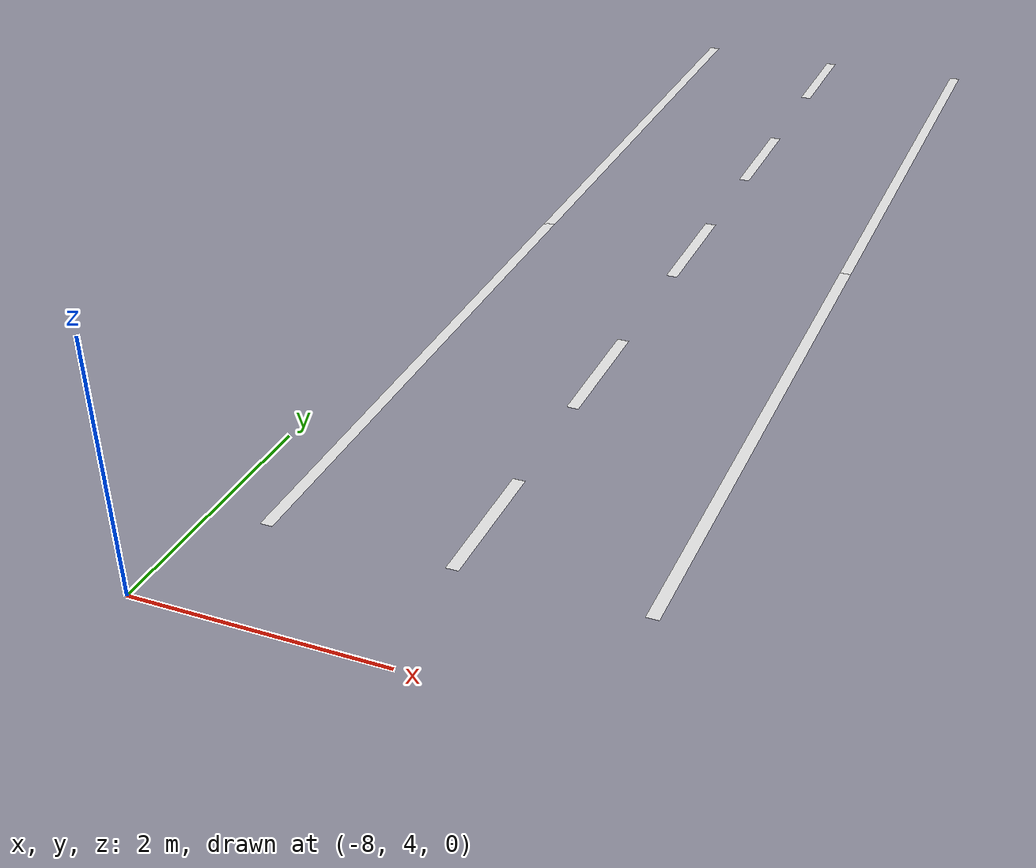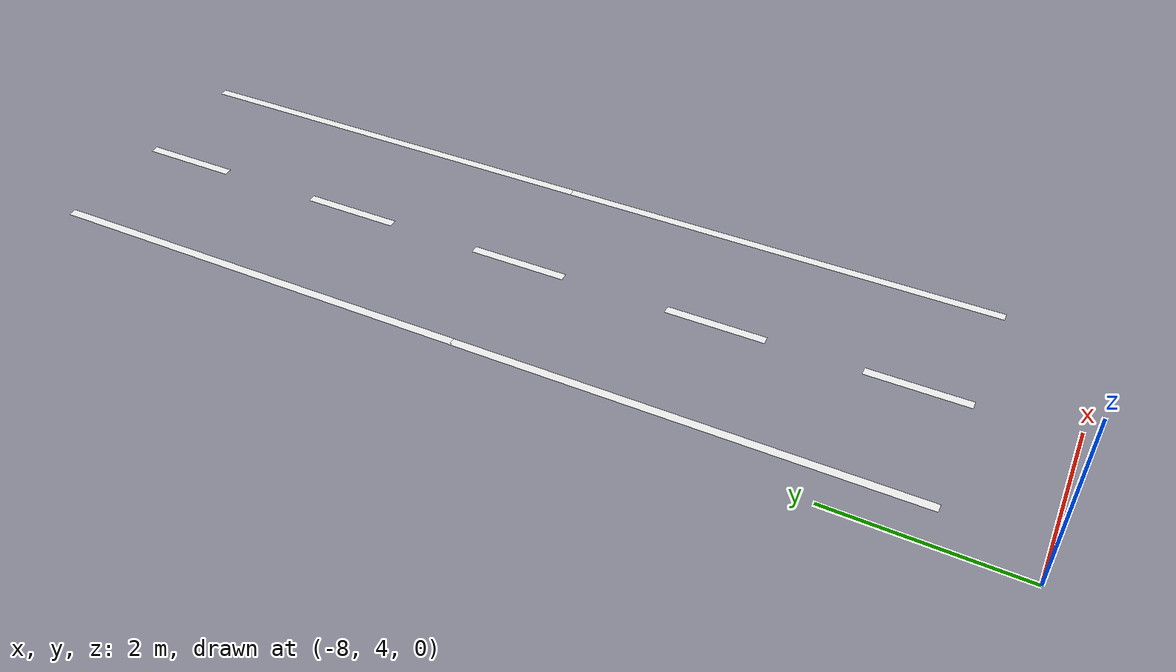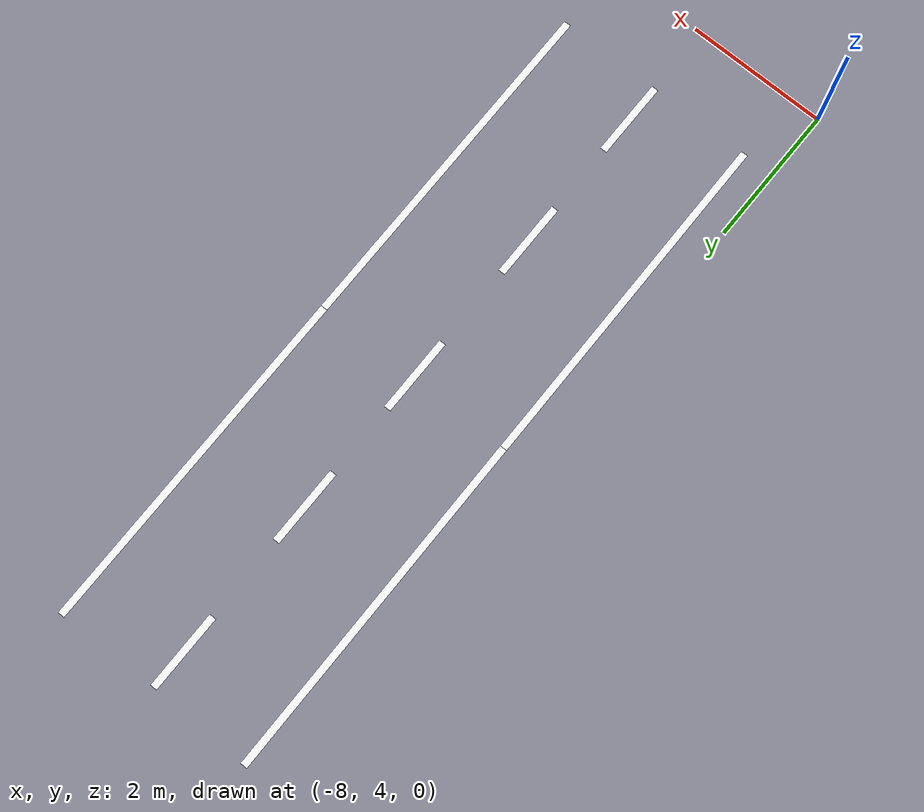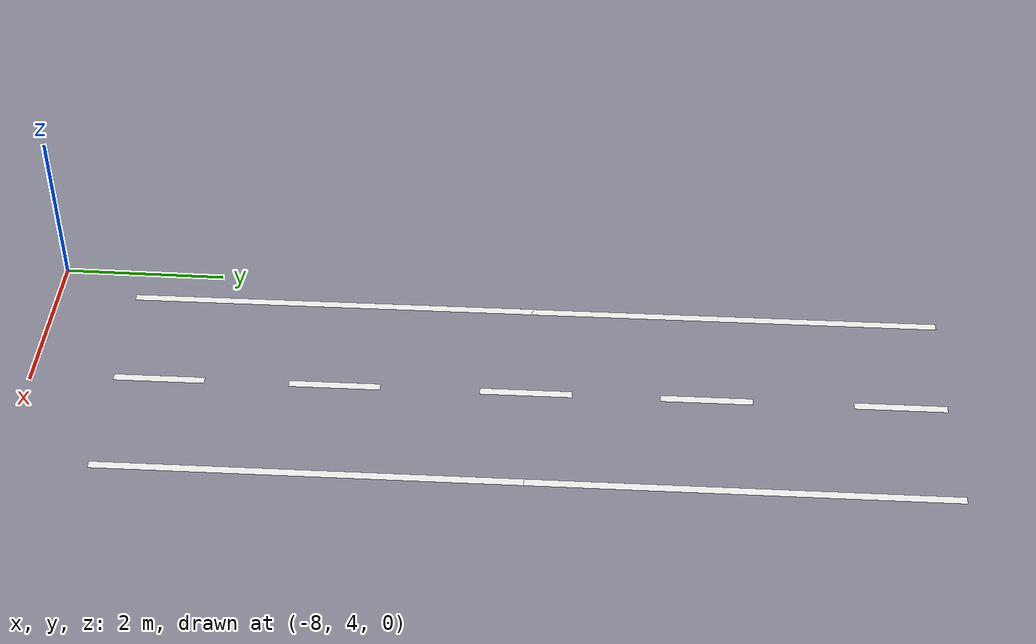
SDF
<sdf version="1.6">
 <model name="roadSystem">
  <model name="road_clone_clone">
   <model name="road">
    <link name="link">
     <pose>-0.42356 2.05106 0 0 -0 0</pose>
     <inertial>
      <mass>0.362604</mass>
      <inertia>
       <ixx>0.00016034</ixx>
       <ixy>0</ixy>
       <ixz>0</ixz>
       <iyy>0.757889</iyy>
       <iyz>0</iyz>
       <izz>0.758045</izz>
      </inertia>
     </inertial>
     <visual name="visual">
      <geometry><box><size>5 0.1 1e-06</size></box></geometry>
      <material>
       <script><name>Gazebo/White</name><uri>file://media/materials/scripts/gazebo.material</uri></script>
       <shader type="pixel"><normal_map>__default__</normal_map></shader>
       <ambient>1 1 1 1</ambient>
       <diffuse>0.7 0.7 0.7 0</diffuse>
       <specular>0.01 0.01 0.01 0</specular>
       <emissive>0 0 0 1</emissive>
       <lighting>0</lighting>
      </material>
     </visual>
     <collision name="collision">
      <geometry><box><size>5.00814 0.072377 0.008224</size></box></geometry>
      <surface>
       <friction>
        <ode><mu>1</mu><mu2>1</mu2><fdir1>0 0 0</fdir1><slip1>0</slip1><slip2>0</slip2></ode>
        <torsional>
         <coefficient>1</coefficient>
         <patch_radius>0</patch_radius>
         <surface_radius>0</surface_radius>
         <use_patch_radius>1</use_patch_radius>
         <ode><slip>0</slip></ode>
        </torsional>
       </friction>
       <bounce><restitution_coefficient>0</restitution_coefficient><threshold>1e+06</threshold></bounce>
       <contact>
        <collide_without_contact>0</collide_without_contact>
        <collide_without_contact_bitmask>1</collide_without_contact_bitmask>
        <collide_bitmask>1</collide_bitmask>
        <ode>
         <soft_cfm>0</soft_cfm>
         <soft_erp>0.2</soft_erp>
         <kp>1e+13</kp>
         <kd>1</kd>
         <max_vel>0.01</max_vel>
         <min_depth>0</min_depth>
        </ode>
        <bullet>
         <split_impulse>1</split_impulse>
         <split_impulse_penetration_threshold>-0.01</split_impulse_penetration_threshold>
         <soft_cfm>0</soft_cfm>
         <soft_erp>0.2</soft_erp>
         <kp>1e+13</kp>
         <kd>1</kd>
        </bullet>
       </contact>
      </surface>
     </collision>
    </link>
    <static>0</static>
    <pose>4.98271 0.008236 0 0 -0 0</pose>
   </model>
   <model name="road_clone">
    <link name="link">
     <pose>-0.42356 2.05106 0 0 -0 0</pose>
     <inertial>
      <mass>0.362604</mass>
      <inertia>
       <ixx>0.00016034</ixx>
       <ixy>0</ixy>
       <ixz>0</ixz>
       <iyy>0.757889</iyy>
       <iyz>0</iyz>
       <izz>0.758045</izz>
      </inertia>
     </inertial>
     <visual name="visual">
      <geometry><box><size>5 0.1 1e-06</size></box></geometry>
      <material>
       <script><name>Gazebo/White</name><uri>file://media/materials/scripts/gazebo.material</uri></script>
       <shader type="pixel"><normal_map>__default__</normal_map></shader>
       <ambient>1 1 1 1</ambient>
       <diffuse>0.7 0.7 0.7 0</diffuse>
       <specular>0.01 0.01 0.01 0</specular>
       <emissive>0 0 0 1</emissive>
       <lighting>0</lighting>
      </material>
     </visual>
     <collision name="collision">
      <geometry><box><size>5.00814 0.072377 0.008224</size></box></geometry>
      <surface>
       <friction>
        <ode><mu>1</mu><mu2>1</mu2><fdir1>0 0 0</fdir1><slip1>0</slip1><slip2>0</slip2></ode>
        <torsional>
         <coefficient>1</coefficient>
         <patch_radius>0</patch_radius>
         <surface_radius>0</surface_radius>
         <use_patch_radius>1</use_patch_radius>
         <ode><slip>0</slip></ode>
        </torsional>
       </friction>
       <bounce><restitution_coefficient>0</restitution_coefficient><threshold>1e+06</threshold></bounce>
       <contact>
        <collide_without_contact>0</collide_without_contact>
        <collide_without_contact_bitmask>1</collide_without_contact_bitmask>
        <collide_bitmask>1</collide_bitmask>
        <ode>
         <soft_cfm>0</soft_cfm>
         <soft_erp>0.2</soft_erp>
         <kp>1e+13</kp>
         <kd>1</kd>
         <max_vel>0.01</max_vel>
         <min_depth>0</min_depth>
        </ode>
        <bullet>
         <split_impulse>1</split_impulse>
         <split_impulse_penetration_threshold>-0.01</split_impulse_penetration_threshold>
         <soft_cfm>0</soft_cfm>
         <soft_erp>0.2</soft_erp>
         <kp>1e+13</kp>
         <kd>1</kd>
        </bullet>
       </contact>
      </surface>
     </collision>
    </link>
    <static>0</static>
    <pose>-0.01634 0.008315 0 0 -0 0</pose>
   </model>
   <model name="roadmark">
    <link name="link">
     <pose>-0.38042 1.1429 0 0 -0 0</pose>
     <inertial>
      <mass>0.362604</mass>
      <inertia>
       <ixx>0.00016034</ixx>
       <ixy>0</ixy>
       <ixz>0</ixz>
       <iyy>0.757889</iyy>
       <iyz>0</iyz>
       <izz>0.758045</izz>
      </inertia>
     </inertial>
     <visual name="visual">
      <geometry><box><size>5 0.1 1e-06</size></box></geometry>
      <material>
       <script><name>Gazebo/White</name><uri>file://media/materials/scripts/gazebo.material</uri></script>
       <shader type="pixel"><normal_map>__default__</normal_map></shader>
       <ambient>1 1 1 1</ambient>
       <diffuse>0.7 0.7 0.7 0</diffuse>
       <specular>0.01 0.01 0.01 0</specular>
       <emissive>0 0 0 1</emissive>
       <lighting>0</lighting>
      </material>
     </visual>
     <collision name="collision">
      <geometry><box><size>5.00814 0.072377 0.008224</size></box></geometry>
      <surface>
       <friction>
        <ode><mu>1</mu><mu2>1</mu2><fdir1>0 0 0</fdir1><slip1>0</slip1><slip2>0</slip2></ode>
        <torsional>
         <coefficient>1</coefficient>
         <patch_radius>0</patch_radius>
         <surface_radius>0</surface_radius>
         <use_patch_radius>1</use_patch_radius>
         <ode><slip>0</slip></ode>
        </torsional>
       </friction>
       <bounce><restitution_coefficient>0</restitution_coefficient><threshold>1e+06</threshold></bounce>
       <contact>
        <collide_without_contact>0</collide_without_contact>
        <collide_without_contact_bitmask>1</collide_without_contact_bitmask>
        <collide_bitmask>1</collide_bitmask>
        <ode>
         <soft_cfm>0</soft_cfm>
         <soft_erp>0.2</soft_erp>
         <kp>1e+13</kp>
         <kd>1</kd>
         <max_vel>0.01</max_vel>
         <min_depth>0</min_depth>
        </ode>
        <bullet>
         <split_impulse>1</split_impulse>
         <split_impulse_penetration_threshold>-0.01</split_impulse_penetration_threshold>
         <soft_cfm>0</soft_cfm>
         <soft_erp>0.2</soft_erp>
         <kp>1e+13</kp>
         <kd>1</kd>
        </bullet>
       </contact>
      </surface>
     </collision>
    </link>
    <static>0</static>
    <pose>-0.037207 -1.98082 0 0 -0 0</pose>
   </model>
   <model name="roadmark_clone_0">
    <link name="link">
     <pose>-0.38042 1.1429 0 0 -0 0</pose>
     <inertial>
      <mass>0.362604</mass>
      <inertia>
       <ixx>0.00016034</ixx>
       <ixy>0</ixy>
       <ixz>0</ixz>
       <iyy>0.757889</iyy>
       <iyz>0</iyz>
       <izz>0.758045</izz>
      </inertia>
     </inertial>
     <visual name="visual">
      <geometry><box><size>5 0.1 1e-06</size></box></geometry>
      <material>
       <script><name>Gazebo/White</name><uri>file://media/materials/scripts/gazebo.material</uri></script>
       <shader type="pixel"><normal_map>__default__</normal_map></shader>
       <ambient>1 1 1 1</ambient>
       <diffuse>0.7 0.7 0.7 0</diffuse>
       <specular>0.01 0.01 0.01 0</specular>
       <emissive>0 0 0 1</emissive>
       <lighting>0</lighting>
      </material>
     </visual>
     <collision name="collision">
      <geometry><box><size>5.00814 0.072377 0.008224</size></box></geometry>
      <surface>
       <friction>
        <ode><mu>1</mu><mu2>1</mu2><fdir1>0 0 0</fdir1><slip1>0</slip1><slip2>0</slip2></ode>
        <torsional>
         <coefficient>1</coefficient>
         <patch_radius>0</patch_radius>
         <surface_radius>0</surface_radius>
         <use_patch_radius>1</use_patch_radius>
         <ode><slip>0</slip></ode>
        </torsional>
       </friction>
       <bounce><restitution_coefficient>0</restitution_coefficient><threshold>1e+06</threshold></bounce>
       <contact>
        <collide_without_contact>0</collide_without_contact>
        <collide_without_contact_bitmask>1</collide_without_contact_bitmask>
        <collide_bitmask>1</collide_bitmask>
        <ode>
         <soft_cfm>0</soft_cfm>
         <soft_erp>0.2</soft_erp>
         <kp>1e+13</kp>
         <kd>1</kd>
         <max_vel>0.01</max_vel>
         <min_depth>0</min_depth>
        </ode>
        <bullet>
         <split_impulse>1</split_impulse>
         <split_impulse_penetration_threshold>-0.01</split_impulse_penetration_threshold>
         <soft_cfm>0</soft_cfm>
         <soft_erp>0.2</soft_erp>
         <kp>1e+13</kp>
         <kd>1</kd>
        </bullet>
       </contact>
      </surface>
     </collision>
    </link>
    <static>0</static>
    <pose>4.94295 -1.98208 0 0 -0 0</pose>
   </model>
   <model name="roadmark_mid">
    <link name="link">
     <pose>-2.29682 2.593 0.0001 0 -0 0</pose>
     <inertial>
      <mass>0.0807885</mass>
      <inertia>
       <ixx>3.572e-05</ixx>
       <ixy>0</ixy>
       <ixz>0</ixz>
       <iyy>0.00838261</iyy>
       <iyz>0</iyz>
       <izz>0.00841742</izz>
      </inertia>
     </inertial>
     <visual name="visual">
      <geometry><box><size>1.1 0.1 1e-06</size></box></geometry>
      <material>
       <script><name>Gazebo/White</name><uri>file://media/materials/scripts/gazebo.material</uri></script>
       <shader type="pixel"><normal_map>__default__</normal_map></shader>
       <ambient>1 1 1 1</ambient>
       <diffuse>0.7 0.7 0.7 0</diffuse>
       <specular>0.01 0.01 0.01 0</specular>
       <emissive>0 0 0 1</emissive>
       <lighting>0</lighting>
      </material>
     </visual>
     <collision name="collision">
      <geometry><box><size>1.11582 0.072377 0.008224</size></box></geometry>
      <surface>
       <friction>
        <ode><mu>1</mu><mu2>1</mu2><fdir1>0 0 0</fdir1><slip1>0</slip1><slip2>0</slip2></ode>
        <torsional>
         <coefficient>1</coefficient>
         <patch_radius>0</patch_radius>
         <surface_radius>0</surface_radius>
         <use_patch_radius>1</use_patch_radius>
         <ode><slip>0</slip></ode>
        </torsional>
       </friction>
       <bounce><restitution_coefficient>0</restitution_coefficient><threshold>1e+06</threshold></bounce>
       <contact>
        <collide_without_contact>0</collide_without_contact>
        <collide_without_contact_bitmask>1</collide_without_contact_bitmask>
        <collide_bitmask>1</collide_bitmask>
        <ode>
         <soft_cfm>0</soft_cfm>
         <soft_erp>0.2</soft_erp>
         <kp>1e+13</kp>
         <kd>1</kd>
         <max_vel>0.01</max_vel>
         <min_depth>0</min_depth>
        </ode>
        <bullet>
         <split_impulse>1</split_impulse>
         <split_impulse_penetration_threshold>-0.01</split_impulse_penetration_threshold>
         <soft_cfm>0</soft_cfm>
         <soft_erp>0.2</soft_erp>
         <kp>1e+13</kp>
         <kd>1</kd>
        </bullet>
       </contact>
      </surface>
     </collision>
    </link>
    <static>0</static>
    <pose>8.80135 -1.98422 0 0 -0 0</pose>
   </model>
   <model name="roadmark_mid_clone">
    <link name="link">
     <pose>-2.29682 2.593 0.0001 0 -0 0</pose>
     <inertial>
      <mass>0.0807885</mass>
      <inertia>
       <ixx>3.572e-05</ixx>
       <ixy>0</ixy>
       <ixz>0</ixz>
       <iyy>0.00838261</iyy>
       <iyz>0</iyz>
       <izz>0.00841742</izz>
      </inertia>
     </inertial>
     <visual name="visual">
      <geometry><box><size>1.1 0.1 1e-06</size></box></geometry>
      <material>
       <script><name>Gazebo/White</name><uri>file://media/materials/scripts/gazebo.material</uri></script>
       <shader type="pixel"><normal_map>__default__</normal_map></shader>
       <ambient>1 1 1 1</ambient>
       <diffuse>0.7 0.7 0.7 0</diffuse>
       <specular>0.01 0.01 0.01 0</specular>
       <emissive>0 0 0 1</emissive>
       <lighting>0</lighting>
      </material>
     </visual>
     <collision name="collision">
      <geometry><box><size>1.11582 0.072377 0.008224</size></box></geometry>
      <surface>
       <friction>
        <ode><mu>1</mu><mu2>1</mu2><fdir1>0 0 0</fdir1><slip1>0</slip1><slip2>0</slip2></ode>
        <torsional>
         <coefficient>1</coefficient>
         <patch_radius>0</patch_radius>
         <surface_radius>0</surface_radius>
         <use_patch_radius>1</use_patch_radius>
         <ode><slip>0</slip></ode>
        </torsional>
       </friction>
       <bounce><restitution_coefficient>0</restitution_coefficient><threshold>1e+06</threshold></bounce>
       <contact>
        <collide_without_contact>0</collide_without_contact>
        <collide_without_contact_bitmask>1</collide_without_contact_bitmask>
        <collide_bitmask>1</collide_bitmask>
        <ode>
         <soft_cfm>0</soft_cfm>
         <soft_erp>0.2</soft_erp>
         <kp>1e+13</kp>
         <kd>1</kd>
         <max_vel>0.01</max_vel>
         <min_depth>0</min_depth>
        </ode>
        <bullet>
         <split_impulse>1</split_impulse>
         <split_impulse_penetration_threshold>-0.01</split_impulse_penetration_threshold>
         <soft_cfm>0</soft_cfm>
         <soft_erp>0.2</soft_erp>
         <kp>1e+13</kp>
         <kd>1</kd>
        </bullet>
       </contact>
      </surface>
     </collision>
    </link>
    <static>0</static>
    <pose>-0.048046 -1.98463 0 0 -0 0</pose>
   </model>
   <model name="roadmark_mid_clone_0">
    <link name="link">
     <pose>-2.29682 2.593 0.0001 0 -0 0</pose>
     <inertial>
      <mass>0.0807885</mass>
      <inertia>
       <ixx>3.572e-05</ixx>
       <ixy>0</ixy>
       <ixz>0</ixz>
       <iyy>0.00838261</iyy>
       <iyz>0</iyz>
       <izz>0.00841742</izz>
      </inertia>
     </inertial>
     <visual name="visual">
      <geometry><box><size>1.1 0.1 1e-06</size></box></geometry>
      <material>
       <script><name>Gazebo/White</name><uri>file://media/materials/scripts/gazebo.material</uri></script>
       <shader type="pixel"><normal_map>__default__</normal_map></shader>
       <ambient>1 1 1 1</ambient>
       <diffuse>0.7 0.7 0.7 0</diffuse>
       <specular>0.01 0.01 0.01 0</specular>
       <emissive>0 0 0 1</emissive>
       <lighting>0</lighting>
      </material>
     </visual>
     <collision name="collision">
      <geometry><box><size>1.11582 0.072377 0.008224</size></box></geometry>
      <surface>
       <friction>
        <ode><mu>1</mu><mu2>1</mu2><fdir1>0 0 0</fdir1><slip1>0</slip1><slip2>0</slip2></ode>
        <torsional>
         <coefficient>1</coefficient>
         <patch_radius>0</patch_radius>
         <surface_radius>0</surface_radius>
         <use_patch_radius>1</use_patch_radius>
         <ode><slip>0</slip></ode>
        </torsional>
       </friction>
       <bounce><restitution_coefficient>0</restitution_coefficient><threshold>1e+06</threshold></bounce>
       <contact>
        <collide_without_contact>0</collide_without_contact>
        <collide_without_contact_bitmask>1</collide_without_contact_bitmask>
        <collide_bitmask>1</collide_bitmask>
        <ode>
         <soft_cfm>0</soft_cfm>
         <soft_erp>0.2</soft_erp>
         <kp>1e+13</kp>
         <kd>1</kd>
         <max_vel>0.01</max_vel>
         <min_depth>0</min_depth>
        </ode>
        <bullet>
         <split_impulse>1</split_impulse>
         <split_impulse_penetration_threshold>-0.01</split_impulse_penetration_threshold>
         <soft_cfm>0</soft_cfm>
         <soft_erp>0.2</soft_erp>
         <kp>1e+13</kp>
         <kd>1</kd>
        </bullet>
       </contact>
      </surface>
     </collision>
    </link>
    <static>0</static>
    <pose>4.39245 -1.98631 0 0 -0 0</pose>
   </model>
   <model name="roadmark_mid_clone_1">
    <link name="link">
     <pose>-2.29682 2.593 0.0001 0 -0 0</pose>
     <inertial>
      <mass>0.0807885</mass>
      <inertia>
       <ixx>3.572e-05</ixx>
       <ixy>0</ixy>
       <ixz>0</ixz>
       <iyy>0.00838261</iyy>
       <iyz>0</iyz>
       <izz>0.00841742</izz>
      </inertia>
     </inertial>
     <visual name="visual">
      <geometry><box><size>1.1 0.1 1e-06</size></box></geometry>
      <material>
       <script><name>Gazebo/White</name><uri>file://media/materials/scripts/gazebo.material</uri></script>
       <shader type="pixel"><normal_map>__default__</normal_map></shader>
       <ambient>1 1 1 1</ambient>
       <diffuse>0.7 0.7 0.7 0</diffuse>
       <specular>0.01 0.01 0.01 0</specular>
       <emissive>0 0 0 1</emissive>
       <lighting>0</lighting>
      </material>
     </visual>
     <collision name="collision">
      <geometry><box><size>1.11582 0.072377 0.008224</size></box></geometry>
      <surface>
       <friction>
        <ode><mu>1</mu><mu2>1</mu2><fdir1>0 0 0</fdir1><slip1>0</slip1><slip2>0</slip2></ode>
        <torsional>
         <coefficient>1</coefficient>
         <patch_radius>0</patch_radius>
         <surface_radius>0</surface_radius>
         <use_patch_radius>1</use_patch_radius>
         <ode><slip>0</slip></ode>
        </torsional>
       </friction>
       <bounce><restitution_coefficient>0</restitution_coefficient><threshold>1e+06</threshold></bounce>
       <contact>
        <collide_without_contact>0</collide_without_contact>
        <collide_without_contact_bitmask>1</collide_without_contact_bitmask>
        <collide_bitmask>1</collide_bitmask>
        <ode>
         <soft_cfm>0</soft_cfm>
         <soft_erp>0.2</soft_erp>
         <kp>1e+13</kp>
         <kd>1</kd>
         <max_vel>0.01</max_vel>
         <min_depth>0</min_depth>
        </ode>
        <bullet>
         <split_impulse>1</split_impulse>
         <split_impulse_penetration_threshold>-0.01</split_impulse_penetration_threshold>
         <soft_cfm>0</soft_cfm>
         <soft_erp>0.2</soft_erp>
         <kp>1e+13</kp>
         <kd>1</kd>
        </bullet>
       </contact>
      </surface>
     </collision>
    </link>
    <static>0</static>
    <pose>6.68356 -1.98916 0 0 -0 0</pose>
   </model>
   <model name="roadmark_mid_clone_2">
    <link name="link">
     <pose>-2.29682 2.593 0.0001 0 -0 0</pose>
     <inertial>
      <mass>0.0807885</mass>
      <inertia>
       <ixx>3.572e-05</ixx>
       <ixy>0</ixy>
       <ixz>0</ixz>
       <iyy>0.00838261</iyy>
       <iyz>0</iyz>
       <izz>0.00841742</izz>
      </inertia>
     </inertial>
     <visual name="visual">
      <geometry><box><size>1.1 0.1 1e-06</size></box></geometry>
      <material>
       <script><name>Gazebo/White</name><uri>file://media/materials/scripts/gazebo.material</uri></script>
       <shader type="pixel"><normal_map>__default__</normal_map></shader>
       <ambient>1 1 1 1</ambient>
       <diffuse>0.7 0.7 0.7 0</diffuse>
       <specular>0.01 0.01 0.01 0</specular>
       <emissive>0 0 0 1</emissive>
       <lighting>0</lighting>
      </material>
     </visual>
     <collision name="collision">
      <geometry><box><size>1.11582 0.072377 0.008224</size></box></geometry>
      <surface>
       <friction>
        <ode><mu>1</mu><mu2>1</mu2><fdir1>0 0 0</fdir1><slip1>0</slip1><slip2>0</slip2></ode>
        <torsional>
         <coefficient>1</coefficient>
         <patch_radius>0</patch_radius>
         <surface_radius>0</surface_radius>
         <use_patch_radius>1</use_patch_radius>
         <ode><slip>0</slip></ode>
        </torsional>
       </friction>
       <bounce><restitution_coefficient>0</restitution_coefficient><threshold>1e+06</threshold></bounce>
       <contact>
        <collide_without_contact>0</collide_without_contact>
        <collide_without_contact_bitmask>1</collide_without_contact_bitmask>
        <collide_bitmask>1</collide_bitmask>
        <ode>
         <soft_cfm>0</soft_cfm>
         <soft_erp>0.2</soft_erp>
         <kp>1e+13</kp>
         <kd>1</kd>
         <max_vel>0.01</max_vel>
         <min_depth>0</min_depth>
        </ode>
        <bullet>
         <split_impulse>1</split_impulse>
         <split_impulse_penetration_threshold>-0.01</split_impulse_penetration_threshold>
         <soft_cfm>0</soft_cfm>
         <soft_erp>0.2</soft_erp>
         <kp>1e+13</kp>
         <kd>1</kd>
        </bullet>
       </contact>
      </surface>
     </collision>
    </link>
    <static>0</static>
    <pose>2.24236 -1.98333 0 0 -0 0</pose>
   </model>
   <static>0</static>
   <pose>-6.78269 12.0485 0.008097 0 0 -1.56054</pose>
  </model>
  <static>0</static>
 </model>
</sdf>
